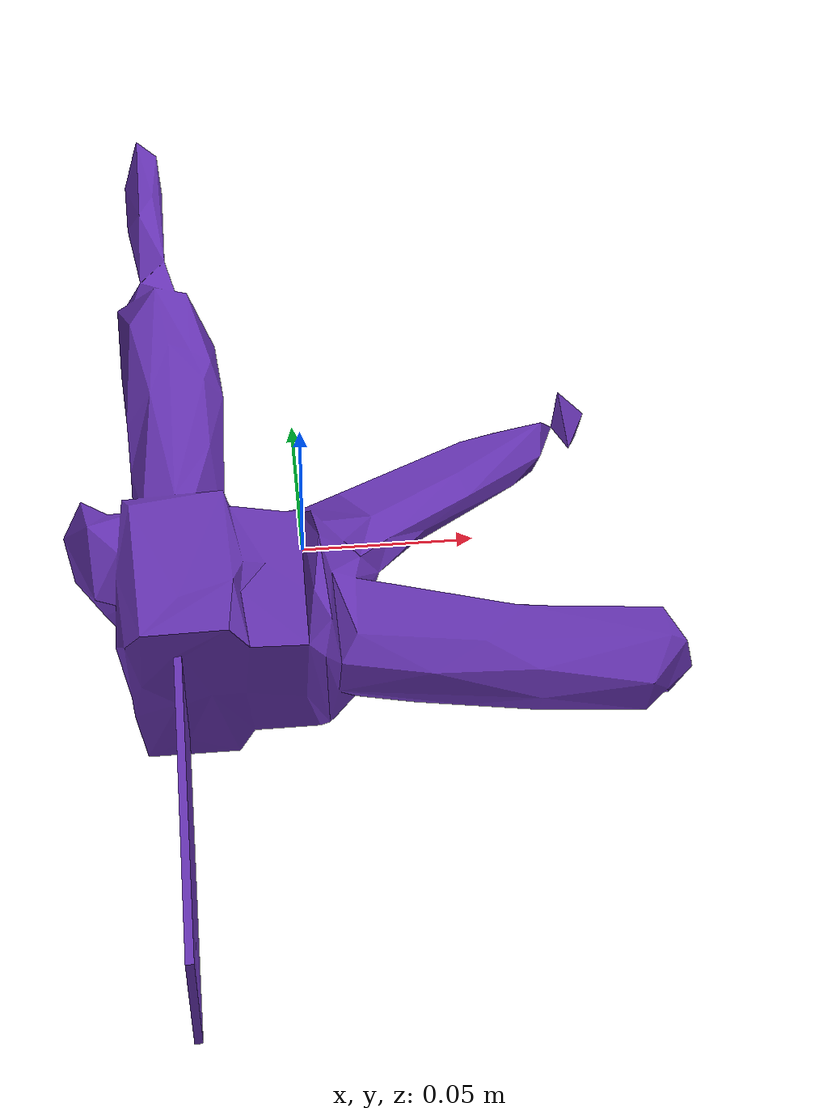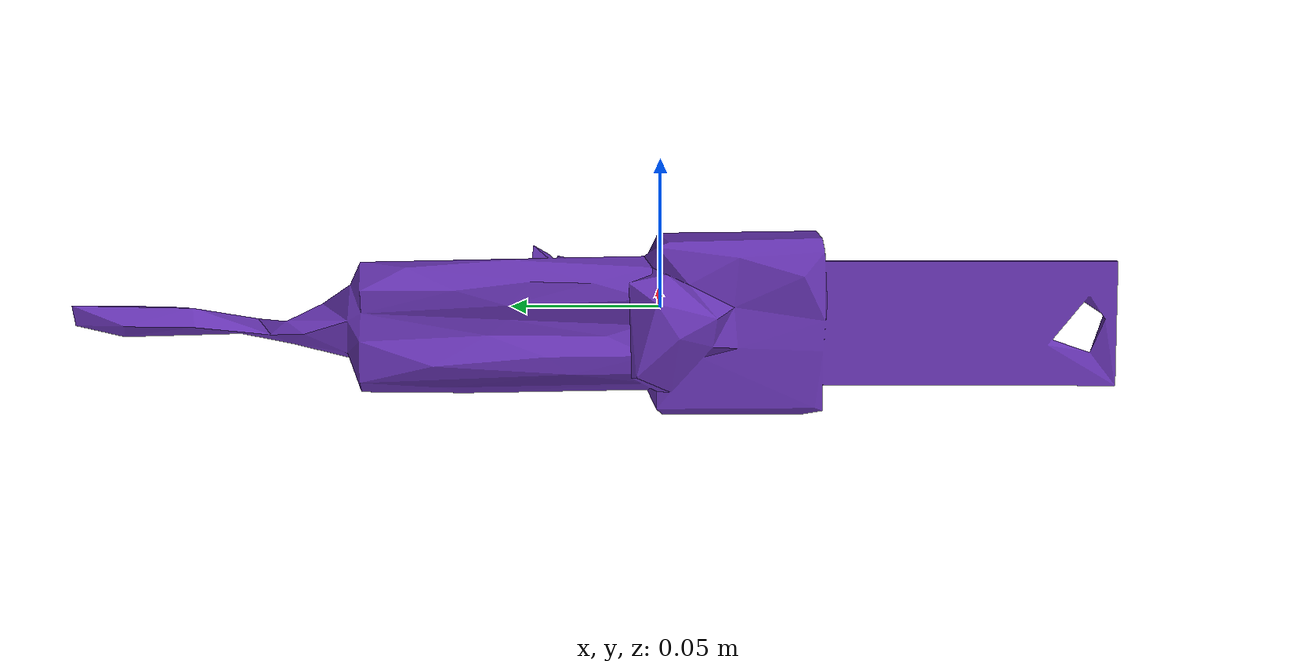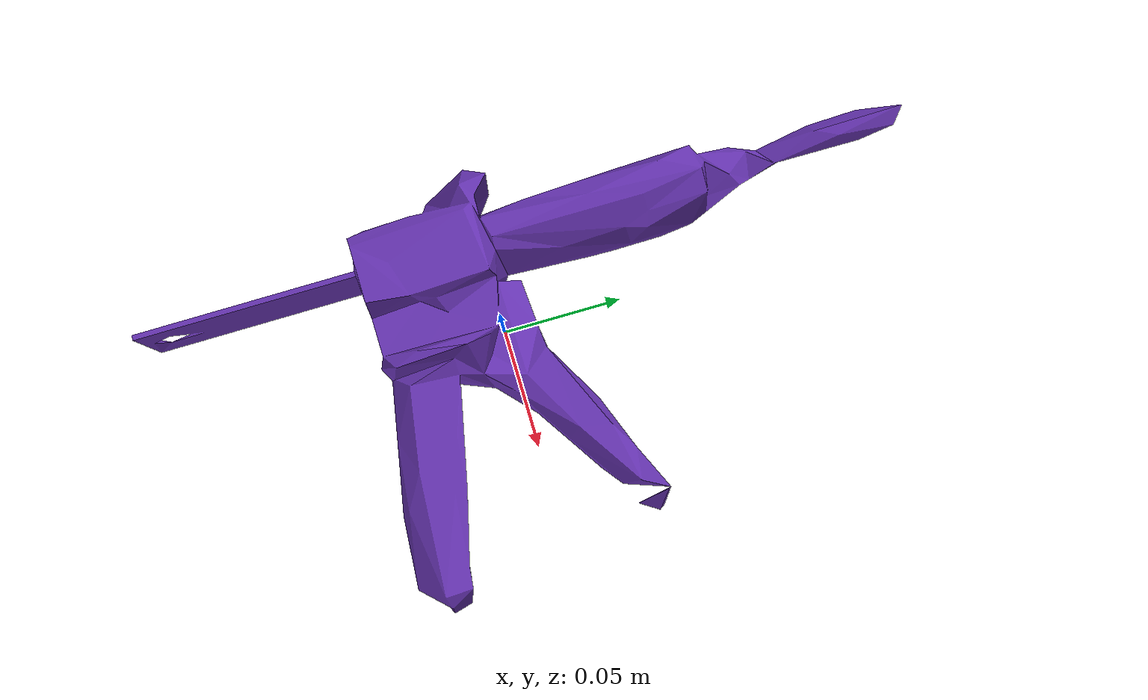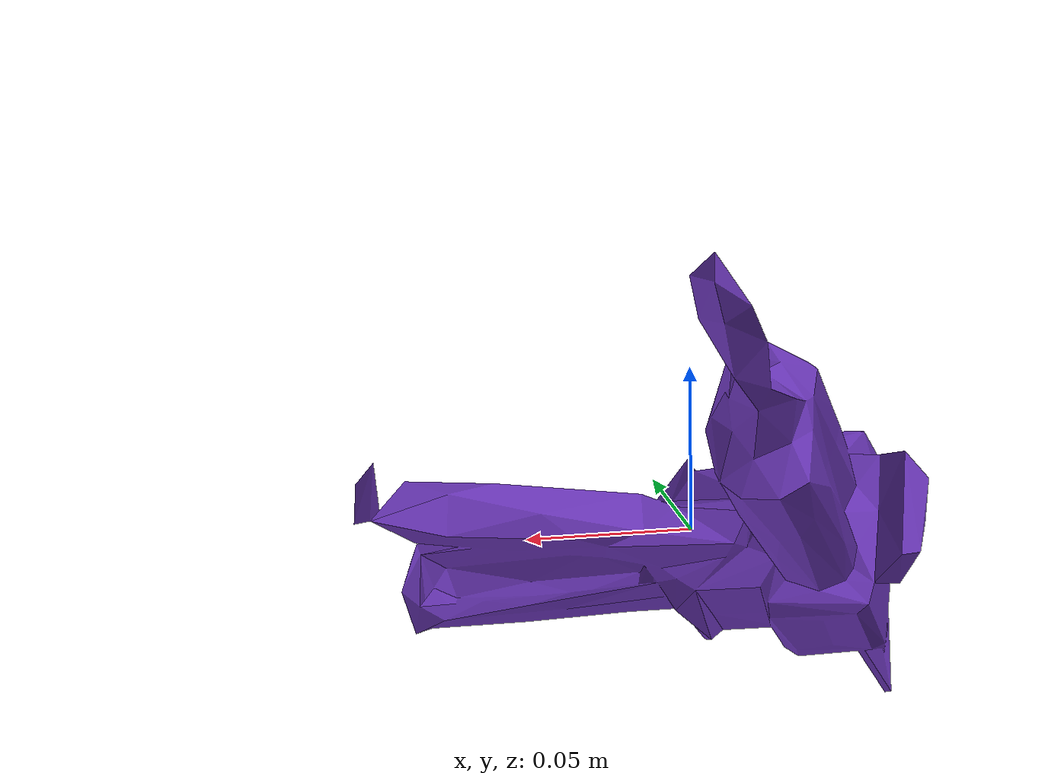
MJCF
<mujoco model="top_watertight_tiny">

  <asset>
    <mesh file="top_watertight_tiny.obj"/>
    <mesh file="top_watertight_tiny_collision_0.obj"/>
    <mesh file="top_watertight_tiny_collision_1.obj"/>
    <mesh file="top_watertight_tiny_collision_2.obj"/>
    <mesh file="top_watertight_tiny_collision_3.obj"/>
    <mesh file="top_watertight_tiny_collision_4.obj"/>
    <mesh file="top_watertight_tiny_collision_5.obj"/>
    <mesh file="top_watertight_tiny_collision_6.obj"/>
    <mesh file="top_watertight_tiny_collision_7.obj"/>
    <mesh file="top_watertight_tiny_collision_8.obj"/>
    <mesh file="top_watertight_tiny_collision_9.obj"/>
    <mesh file="top_watertight_tiny_collision_10.obj"/>
  </asset>
  <worldbody>
    <body name="top_watertight_tiny">
      <freejoint/>
      <geom solimp="0.90 0.95 0.001" solref="0.02 1.0" density="100" friction="0.95 0.4 0.3" rgba="0.4 0.2 0.7 1" mesh="top_watertight_tiny" group="2" type="mesh" contype="0" conaffinity="0"/>
      <geom solimp="0.90 0.95 0.001" solref="0.02 1.0" density="100" friction="0.95 0.4 0.3" mesh="top_watertight_tiny_collision_0" rgba="0.41297629865840446 0.132623637323096 0.41909661175885526 1" group="3" type="mesh"/>
      <geom solimp="0.90 0.95 0.001" solref="0.02 1.0" density="100" friction="0.95 0.4 0.3" mesh="top_watertight_tiny_collision_1" rgba="0.9658651263991697 0.2829020749781658 0.030342449204696975 1" group="3" type="mesh"/>
      <geom solimp="0.90 0.95 0.001" solref="0.02 1.0" density="100" friction="0.95 0.4 0.3" mesh="top_watertight_tiny_collision_2" rgba="0.31009019256659665 0.7226793397542675 0.8441272024316858 1" group="3" type="mesh"/>
      <geom solimp="0.90 0.95 0.001" solref="0.02 1.0" density="100" friction="0.95 0.4 0.3" mesh="top_watertight_tiny_collision_3" rgba="0.3030340874243307 0.6653524407698829 0.559029023887703 1" group="3" type="mesh"/>
      <geom solimp="0.90 0.95 0.001" solref="0.02 1.0" density="100" friction="0.95 0.4 0.3" mesh="top_watertight_tiny_collision_4" rgba="0.3286247381587082 0.5343232529902424 0.8470078434129523 1" group="3" type="mesh"/>
      <geom solimp="0.90 0.95 0.001" solref="0.02 1.0" density="100" friction="0.95 0.4 0.3" mesh="top_watertight_tiny_collision_5" rgba="0.6263352867531058 0.16718040309576898 0.8310610951639776 1" group="3" type="mesh"/>
      <geom solimp="0.90 0.95 0.001" solref="0.02 1.0" density="100" friction="0.95 0.4 0.3" mesh="top_watertight_tiny_collision_6" rgba="0.8921368017238455 0.7554256789386256 0.5825534598443292 1" group="3" type="mesh"/>
      <geom solimp="0.90 0.95 0.001" solref="0.02 1.0" density="100" friction="0.95 0.4 0.3" mesh="top_watertight_tiny_collision_7" rgba="0.07609995633897815 0.6637517173667838 0.3845374397942679 1" group="3" type="mesh"/>
      <geom solimp="0.90 0.95 0.001" solref="0.02 1.0" density="100" friction="0.95 0.4 0.3" mesh="top_watertight_tiny_collision_8" rgba="0.5564454671087776 0.31847522960696484 0.4080247928730385 1" group="3" type="mesh"/>
      <geom solimp="0.90 0.95 0.001" solref="0.02 1.0" density="100" friction="0.95 0.4 0.3" mesh="top_watertight_tiny_collision_9" rgba="0.2507707882850998 0.8521223320056593 0.9507657230613924 1" group="3" type="mesh"/>
      <geom solimp="0.90 0.95 0.001" solref="0.02 1.0" density="100" friction="0.95 0.4 0.3" mesh="top_watertight_tiny_collision_10" rgba="0.9712834718928876 0.38152171799300594 0.7312536959847001 1" group="3" type="mesh"/>
    </body>
  </worldbody>
</mujoco>
